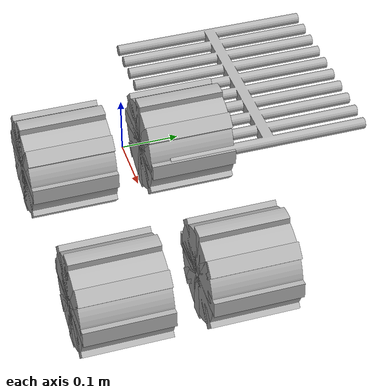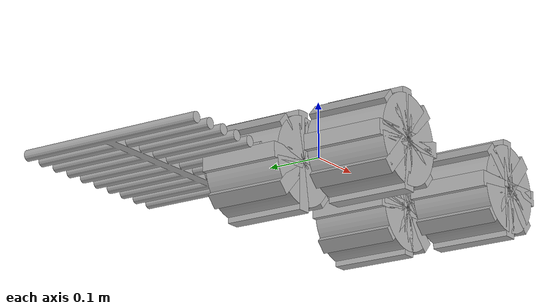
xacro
<?xml version="1.0" ?>
<robot name="easy_imax10" xmlns:xacro="http://www.ros.org/wiki/xacro">

<xacro:include filename="$(find easy_imax10_description)/urdf/materials.xacro" />
<xacro:include filename="$(find easy_imax10_description)/urdf/easy_imax10.trans" />
<xacro:include filename="$(find easy_imax10_description)/urdf/easy_imax10.gazebo" />
<link name="base_link">
  <inertial>
    <origin xyz="0.1694160000000001 6.013399387320873e-17 1.879187308537773e-18" rpy="0 0 0"/>
    <mass value="1.2099574875277086"/>
    <inertia ixx="0.012249" iyy="0.014034" izz="0.02622" ixy="0.0" iyz="0.0" ixz="0.0"/>
  </inertial>
  <visual>
    <origin xyz="0 0 0" rpy="0 0 0"/>
    <geometry>
      <mesh filename="package://easy_imax10_description/meshes/base_link.stl" scale="0.001 0.001 0.001"/>
    </geometry>
    <material name="silver"/>
  </visual>
  <collision>
    <origin xyz="0 0 0" rpy="0 0 0"/>
    <geometry>
      <mesh filename="package://easy_imax10_description/meshes/base_link.stl" scale="0.001 0.001 0.001"/>
    </geometry>
  </collision>
</link>

<link name="square2_2_v1_1">
  <inertial>
    <origin xyz="0.0004924276130157732 0.07500000000000002 0.0005731383886105031" rpy="0 0 0"/>
    <mass value="0.7367843289189576"/>
    <inertia ixx="0.002329" iyy="0.002042" izz="0.002476" ixy="0.0" iyz="0.0" ixz="0.00097"/>
  </inertial>
  <visual>
    <origin xyz="-0.0 0.18 -0.0" rpy="0 0 0"/>
    <geometry>
      <mesh filename="package://easy_imax10_description/meshes/square2_2_v1_1.stl" scale="0.001 0.001 0.001"/>
    </geometry>
    <material name="silver"/>
  </visual>
  <collision>
    <origin xyz="-0.0 0.18 -0.0" rpy="0 0 0"/>
    <geometry>
      <mesh filename="package://easy_imax10_description/meshes/square2_2_v1_1.stl" scale="0.001 0.001 0.001"/>
    </geometry>
  </collision>
</link>

<link name="square2_1_1">
  <inertial>
    <origin xyz="-0.0005531013046860513 0.075 0.0005093578577956545" rpy="0 0 0"/>
    <mass value="0.7351145457295356"/>
    <inertia ixx="0.00244" iyy="0.002037" izz="0.002353" ixy="0.0" iyz="0.0" ixz="-0.000969"/>
  </inertial>
  <visual>
    <origin xyz="-0.0 0.18 -0.0" rpy="0 0 0"/>
    <geometry>
      <mesh filename="package://easy_imax10_description/meshes/square2_1_1.stl" scale="0.001 0.001 0.001"/>
    </geometry>
    <material name="silver"/>
  </visual>
  <collision>
    <origin xyz="-0.0 0.18 -0.0" rpy="0 0 0"/>
    <geometry>
      <mesh filename="package://easy_imax10_description/meshes/square2_1_1.stl" scale="0.001 0.001 0.001"/>
    </geometry>
  </collision>
</link>

<link name="square2_4_v1_1">
  <inertial>
    <origin xyz="-0.0007636030845725855 0.07500000000000225 0.0003817342040724375" rpy="0 0 0"/>
    <mass value="0.73978681659222"/>
    <inertia ixx="0.003404" iyy="0.002066" izz="0.001436" ixy="-0.0" iyz="-0.0" ixz="2.9e-05"/>
  </inertial>
  <visual>
    <origin xyz="-0.0 0.18 -0.0" rpy="0 0 0"/>
    <geometry>
      <mesh filename="package://easy_imax10_description/meshes/square2_4_v1_1.stl" scale="0.001 0.001 0.001"/>
    </geometry>
    <material name="silver"/>
  </visual>
  <collision>
    <origin xyz="-0.0 0.18 -0.0" rpy="0 0 0"/>
    <geometry>
      <mesh filename="package://easy_imax10_description/meshes/square2_4_v1_1.stl" scale="0.001 0.001 0.001"/>
    </geometry>
  </collision>
</link>

<link name="square2_3_v1_1">
  <inertial>
    <origin xyz="-2.309948116219332e-05 0.075 0.0007689635373654955" rpy="0 0 0"/>
    <mass value="0.7360371753107673"/>
    <inertia ixx="0.00143" iyy="0.00204" izz="0.00337" ixy="0.0" iyz="-0.0" ixz="-5.8e-05"/>
  </inertial>
  <visual>
    <origin xyz="-0.0 0.18 -0.0" rpy="0 0 0"/>
    <geometry>
      <mesh filename="package://easy_imax10_description/meshes/square2_3_v1_1.stl" scale="0.001 0.001 0.001"/>
    </geometry>
    <material name="silver"/>
  </visual>
  <collision>
    <origin xyz="-0.0 0.18 -0.0" rpy="0 0 0"/>
    <geometry>
      <mesh filename="package://easy_imax10_description/meshes/square2_3_v1_1.stl" scale="0.001 0.001 0.001"/>
    </geometry>
  </collision>
</link>

<link name="square2_3_v1_2">
  <inertial>
    <origin xyz="-2.309948116219207e-05 0.075 0.0007689635373654955" rpy="0 0 0"/>
    <mass value="0.7360371753107673"/>
    <inertia ixx="0.00143" iyy="0.00204" izz="0.00337" ixy="0.0" iyz="-0.0" ixz="-5.8e-05"/>
  </inertial>
  <visual>
    <origin xyz="-0.338832 0.18 -0.0" rpy="0 0 0"/>
    <geometry>
      <mesh filename="package://easy_imax10_description/meshes/square2_3_v1_2.stl" scale="0.001 0.001 0.001"/>
    </geometry>
    <material name="silver"/>
  </visual>
  <collision>
    <origin xyz="-0.338832 0.18 -0.0" rpy="0 0 0"/>
    <geometry>
      <mesh filename="package://easy_imax10_description/meshes/square2_3_v1_2.stl" scale="0.001 0.001 0.001"/>
    </geometry>
  </collision>
</link>

<link name="square2_1_2">
  <inertial>
    <origin xyz="-0.0005531013046860545 0.075 0.0005093578577956545" rpy="0 0 0"/>
    <mass value="0.7351145457295356"/>
    <inertia ixx="0.00244" iyy="0.002037" izz="0.002353" ixy="0.0" iyz="0.0" ixz="-0.000969"/>
  </inertial>
  <visual>
    <origin xyz="-0.338832 0.18 -0.0" rpy="0 0 0"/>
    <geometry>
      <mesh filename="package://easy_imax10_description/meshes/square2_1_2.stl" scale="0.001 0.001 0.001"/>
    </geometry>
    <material name="silver"/>
  </visual>
  <collision>
    <origin xyz="-0.338832 0.18 -0.0" rpy="0 0 0"/>
    <geometry>
      <mesh filename="package://easy_imax10_description/meshes/square2_1_2.stl" scale="0.001 0.001 0.001"/>
    </geometry>
  </collision>
</link>

<link name="square2_4_v1_2">
  <inertial>
    <origin xyz="-0.0007636030845726283 0.07500000000000225 0.0003817342040724375" rpy="0 0 0"/>
    <mass value="0.73978681659222"/>
    <inertia ixx="0.003404" iyy="0.002066" izz="0.001436" ixy="0.0" iyz="-0.0" ixz="2.9e-05"/>
  </inertial>
  <visual>
    <origin xyz="-0.338832 0.18 -0.0" rpy="0 0 0"/>
    <geometry>
      <mesh filename="package://easy_imax10_description/meshes/square2_4_v1_2.stl" scale="0.001 0.001 0.001"/>
    </geometry>
    <material name="silver"/>
  </visual>
  <collision>
    <origin xyz="-0.338832 0.18 -0.0" rpy="0 0 0"/>
    <geometry>
      <mesh filename="package://easy_imax10_description/meshes/square2_4_v1_2.stl" scale="0.001 0.001 0.001"/>
    </geometry>
  </collision>
</link>

<link name="square2_2_v1_2">
  <inertial>
    <origin xyz="0.0004924276130157668 0.07500000000000002 0.0005731383886105031" rpy="0 0 0"/>
    <mass value="0.7367843289189576"/>
    <inertia ixx="0.002329" iyy="0.002042" izz="0.002476" ixy="0.0" iyz="0.0" ixz="0.00097"/>
  </inertial>
  <visual>
    <origin xyz="-0.338832 0.18 -0.0" rpy="0 0 0"/>
    <geometry>
      <mesh filename="package://easy_imax10_description/meshes/square2_2_v1_2.stl" scale="0.001 0.001 0.001"/>
    </geometry>
    <material name="silver"/>
  </visual>
  <collision>
    <origin xyz="-0.338832 0.18 -0.0" rpy="0 0 0"/>
    <geometry>
      <mesh filename="package://easy_imax10_description/meshes/square2_2_v1_2.stl" scale="0.001 0.001 0.001"/>
    </geometry>
  </collision>
</link>

<link name="csquare2_4_v1_1">
  <inertial>
    <origin xyz="-0.0007636030845725677 -0.07500000000000229 0.00038173420407241283" rpy="0 0 0"/>
    <mass value="0.7397868165922202"/>
    <inertia ixx="0.003404" iyy="0.002066" izz="0.001436" ixy="0.0" iyz="-0.0" ixz="2.9e-05"/>
  </inertial>
  <visual>
    <origin xyz="-0.0 -0.18 -0.0" rpy="0 0 0"/>
    <geometry>
      <mesh filename="package://easy_imax10_description/meshes/csquare2_4_v1_1.stl" scale="0.001 0.001 0.001"/>
    </geometry>
    <material name="silver"/>
  </visual>
  <collision>
    <origin xyz="-0.0 -0.18 -0.0" rpy="0 0 0"/>
    <geometry>
      <mesh filename="package://easy_imax10_description/meshes/csquare2_4_v1_1.stl" scale="0.001 0.001 0.001"/>
    </geometry>
  </collision>
</link>

<link name="csquare2_1_v1_1">
  <inertial>
    <origin xyz="-0.0005531013046860635 -0.075 0.0005093578577957038" rpy="0 0 0"/>
    <mass value="0.7351145457295358"/>
    <inertia ixx="0.00244" iyy="0.002037" izz="0.002353" ixy="-0.0" iyz="0.0" ixz="-0.000969"/>
  </inertial>
  <visual>
    <origin xyz="-0.0 -0.18 -0.0" rpy="0 0 0"/>
    <geometry>
      <mesh filename="package://easy_imax10_description/meshes/csquare2_1_v1_1.stl" scale="0.001 0.001 0.001"/>
    </geometry>
    <material name="silver"/>
  </visual>
  <collision>
    <origin xyz="-0.0 -0.18 -0.0" rpy="0 0 0"/>
    <geometry>
      <mesh filename="package://easy_imax10_description/meshes/csquare2_1_v1_1.stl" scale="0.001 0.001 0.001"/>
    </geometry>
  </collision>
</link>

<link name="csquare2_2_v1_1">
  <inertial>
    <origin xyz="0.0004924276130157547 -0.07499999999999997 0.0005731383886105023" rpy="0 0 0"/>
    <mass value="0.7367843289189574"/>
    <inertia ixx="0.002329" iyy="0.002042" izz="0.002476" ixy="0.0" iyz="0.0" ixz="0.00097"/>
  </inertial>
  <visual>
    <origin xyz="-0.0 -0.18 -0.0" rpy="0 0 0"/>
    <geometry>
      <mesh filename="package://easy_imax10_description/meshes/csquare2_2_v1_1.stl" scale="0.001 0.001 0.001"/>
    </geometry>
    <material name="silver"/>
  </visual>
  <collision>
    <origin xyz="-0.0 -0.18 -0.0" rpy="0 0 0"/>
    <geometry>
      <mesh filename="package://easy_imax10_description/meshes/csquare2_2_v1_1.stl" scale="0.001 0.001 0.001"/>
    </geometry>
  </collision>
</link>

<link name="csquare2_3_v1_1">
  <inertial>
    <origin xyz="-2.309948116218096e-05 -0.075 0.0007689635373654925" rpy="0 0 0"/>
    <mass value="0.7360371753107673"/>
    <inertia ixx="0.00143" iyy="0.00204" izz="0.00337" ixy="0.0" iyz="-0.0" ixz="-5.8e-05"/>
  </inertial>
  <visual>
    <origin xyz="-0.0 -0.18 -0.0" rpy="0 0 0"/>
    <geometry>
      <mesh filename="package://easy_imax10_description/meshes/csquare2_3_v1_1.stl" scale="0.001 0.001 0.001"/>
    </geometry>
    <material name="silver"/>
  </visual>
  <collision>
    <origin xyz="-0.0 -0.18 -0.0" rpy="0 0 0"/>
    <geometry>
      <mesh filename="package://easy_imax10_description/meshes/csquare2_3_v1_1.stl" scale="0.001 0.001 0.001"/>
    </geometry>
  </collision>
</link>

<link name="csquare2_3_v1_2">
  <inertial>
    <origin xyz="-2.309948116219207e-05 -0.075 0.0007689635373654925" rpy="0 0 0"/>
    <mass value="0.7360371753107673"/>
    <inertia ixx="0.00143" iyy="0.00204" izz="0.00337" ixy="0.0" iyz="-0.0" ixz="-5.8e-05"/>
  </inertial>
  <visual>
    <origin xyz="-0.338832 -0.18 -0.0" rpy="0 0 0"/>
    <geometry>
      <mesh filename="package://easy_imax10_description/meshes/csquare2_3_v1_2.stl" scale="0.001 0.001 0.001"/>
    </geometry>
    <material name="silver"/>
  </visual>
  <collision>
    <origin xyz="-0.338832 -0.18 -0.0" rpy="0 0 0"/>
    <geometry>
      <mesh filename="package://easy_imax10_description/meshes/csquare2_3_v1_2.stl" scale="0.001 0.001 0.001"/>
    </geometry>
  </collision>
</link>

<link name="csquare2_1_v1_2">
  <inertial>
    <origin xyz="-0.0005531013046860545 -0.075 0.0005093578577957038" rpy="0 0 0"/>
    <mass value="0.7351145457295358"/>
    <inertia ixx="0.00244" iyy="0.002037" izz="0.002353" ixy="-0.0" iyz="0.0" ixz="-0.000969"/>
  </inertial>
  <visual>
    <origin xyz="-0.338832 -0.18 -0.0" rpy="0 0 0"/>
    <geometry>
      <mesh filename="package://easy_imax10_description/meshes/csquare2_1_v1_2.stl" scale="0.001 0.001 0.001"/>
    </geometry>
    <material name="silver"/>
  </visual>
  <collision>
    <origin xyz="-0.338832 -0.18 -0.0" rpy="0 0 0"/>
    <geometry>
      <mesh filename="package://easy_imax10_description/meshes/csquare2_1_v1_2.stl" scale="0.001 0.001 0.001"/>
    </geometry>
  </collision>
</link>

<link name="csquare2_2_v1_2">
  <inertial>
    <origin xyz="0.0004924276130157668 -0.07499999999999997 0.0005731383886105023" rpy="0 0 0"/>
    <mass value="0.7367843289189574"/>
    <inertia ixx="0.002329" iyy="0.002042" izz="0.002476" ixy="0.0" iyz="0.0" ixz="0.00097"/>
  </inertial>
  <visual>
    <origin xyz="-0.338832 -0.18 -0.0" rpy="0 0 0"/>
    <geometry>
      <mesh filename="package://easy_imax10_description/meshes/csquare2_2_v1_2.stl" scale="0.001 0.001 0.001"/>
    </geometry>
    <material name="silver"/>
  </visual>
  <collision>
    <origin xyz="-0.338832 -0.18 -0.0" rpy="0 0 0"/>
    <geometry>
      <mesh filename="package://easy_imax10_description/meshes/csquare2_2_v1_2.stl" scale="0.001 0.001 0.001"/>
    </geometry>
  </collision>
</link>

<link name="csquare2_4_v1_2">
  <inertial>
    <origin xyz="-0.0007636030845726283 -0.07500000000000229 0.00038173420407241283" rpy="0 0 0"/>
    <mass value="0.7397868165922202"/>
    <inertia ixx="0.003404" iyy="0.002066" izz="0.001436" ixy="-0.0" iyz="-0.0" ixz="2.9e-05"/>
  </inertial>
  <visual>
    <origin xyz="-0.338832 -0.18 -0.0" rpy="0 0 0"/>
    <geometry>
      <mesh filename="package://easy_imax10_description/meshes/csquare2_4_v1_2.stl" scale="0.001 0.001 0.001"/>
    </geometry>
    <material name="silver"/>
  </visual>
  <collision>
    <origin xyz="-0.338832 -0.18 -0.0" rpy="0 0 0"/>
    <geometry>
      <mesh filename="package://easy_imax10_description/meshes/csquare2_4_v1_2.stl" scale="0.001 0.001 0.001"/>
    </geometry>
  </collision>
</link>

<link name="gear_circle_v1_2">
  <inertial>
    <origin xyz="4.052314039881821e-15 0.075 1.1965870465641923e-17" rpy="0 0 0"/>
    <mass value="3.040295996465602"/>
    <inertia ixx="0.010642" iyy="0.009884" izz="0.010642" ixy="0.0" iyz="0.0" ixz="0.0"/>
  </inertial>
  <visual>
    <origin xyz="-0.338832 0.18 -0.0" rpy="0 0 0"/>
    <geometry>
      <mesh filename="package://easy_imax10_description/meshes/gear_circle_v1_2.stl" scale="0.001 0.001 0.001"/>
    </geometry>
    <material name="silver"/>
  </visual>
  <collision>
    <origin xyz="-0.338832 0.18 -0.0" rpy="0 0 0"/>
    <geometry>
      <mesh filename="package://easy_imax10_description/meshes/gear_circle_v1_2.stl" scale="0.001 0.001 0.001"/>
    </geometry>
  </collision>
</link>

<link name="gear_circle_v1_1">
  <inertial>
    <origin xyz="4.056430087852613e-15 0.075 1.1965870465641923e-17" rpy="0 0 0"/>
    <mass value="3.040295996465602"/>
    <inertia ixx="0.010642" iyy="0.009884" izz="0.010642" ixy="-0.0" iyz="0.0" ixz="0.0"/>
  </inertial>
  <visual>
    <origin xyz="-0.0 0.18 -0.0" rpy="0 0 0"/>
    <geometry>
      <mesh filename="package://easy_imax10_description/meshes/gear_circle_v1_1.stl" scale="0.001 0.001 0.001"/>
    </geometry>
    <material name="silver"/>
  </visual>
  <collision>
    <origin xyz="-0.0 0.18 -0.0" rpy="0 0 0"/>
    <geometry>
      <mesh filename="package://easy_imax10_description/meshes/gear_circle_v1_1.stl" scale="0.001 0.001 0.001"/>
    </geometry>
  </collision>
</link>

<link name="cgear_circle_v1_1">
  <inertial>
    <origin xyz="4.056430087852613e-15 -0.075 1.1965870465641923e-17" rpy="0 0 0"/>
    <mass value="3.040295996465602"/>
    <inertia ixx="0.010642" iyy="0.009884" izz="0.010642" ixy="0.0" iyz="0.0" ixz="0.0"/>
  </inertial>
  <visual>
    <origin xyz="-0.0 -0.18 -0.0" rpy="0 0 0"/>
    <geometry>
      <mesh filename="package://easy_imax10_description/meshes/cgear_circle_v1_1.stl" scale="0.001 0.001 0.001"/>
    </geometry>
    <material name="silver"/>
  </visual>
  <collision>
    <origin xyz="-0.0 -0.18 -0.0" rpy="0 0 0"/>
    <geometry>
      <mesh filename="package://easy_imax10_description/meshes/cgear_circle_v1_1.stl" scale="0.001 0.001 0.001"/>
    </geometry>
  </collision>
</link>

<link name="cgear_circle_v1_2">
  <inertial>
    <origin xyz="4.052314039881821e-15 -0.075 1.1965870465641923e-17" rpy="0 0 0"/>
    <mass value="3.040295996465602"/>
    <inertia ixx="0.010642" iyy="0.009884" izz="0.010642" ixy="0.0" iyz="0.0" ixz="0.0"/>
  </inertial>
  <visual>
    <origin xyz="-0.338832 -0.18 -0.0" rpy="0 0 0"/>
    <geometry>
      <mesh filename="package://easy_imax10_description/meshes/cgear_circle_v1_2.stl" scale="0.001 0.001 0.001"/>
    </geometry>
    <material name="silver"/>
  </visual>
  <collision>
    <origin xyz="-0.338832 -0.18 -0.0" rpy="0 0 0"/>
    <geometry>
      <mesh filename="package://easy_imax10_description/meshes/cgear_circle_v1_2.stl" scale="0.001 0.001 0.001"/>
    </geometry>
  </collision>
</link>

<joint name="1" type="fixed">
  <origin xyz="0.0 0.0 0.0" rpy="0 0 0"/>
  <parent link="gear_circle_v1_1"/>
  <child link="square2_2_v1_1"/>
</joint>

<joint name="2" type="fixed">
  <origin xyz="0.0 0.0 0.0" rpy="0 0 0"/>
  <parent link="gear_circle_v1_1"/>
  <child link="square2_1_1"/>
</joint>

<joint name="3" type="fixed">
  <origin xyz="0.0 0.0 0.0" rpy="0 0 0"/>
  <parent link="gear_circle_v1_1"/>
  <child link="square2_4_v1_1"/>
</joint>

<joint name="4" type="fixed">
  <origin xyz="0.0 0.0 0.0" rpy="0 0 0"/>
  <parent link="gear_circle_v1_1"/>
  <child link="square2_3_v1_1"/>
</joint>

<joint name="6" type="fixed">
  <origin xyz="0.0 0.0 0.0" rpy="0 0 0"/>
  <parent link="gear_circle_v1_2"/>
  <child link="square2_3_v1_2"/>
</joint>

<joint name="7" type="fixed">
  <origin xyz="0.0 0.0 0.0" rpy="0 0 0"/>
  <parent link="gear_circle_v1_2"/>
  <child link="square2_1_2"/>
</joint>

<joint name="8" type="fixed">
  <origin xyz="0.0 0.0 0.0" rpy="0 0 0"/>
  <parent link="square2_1_2"/>
  <child link="square2_4_v1_2"/>
</joint>

<joint name="9" type="fixed">
  <origin xyz="0.0 0.0 0.0" rpy="0 0 0"/>
  <parent link="gear_circle_v1_2"/>
  <child link="square2_2_v1_2"/>
</joint>

<joint name="11" type="fixed">
  <origin xyz="0.0 0.0 0.0" rpy="0 0 0"/>
  <parent link="cgear_circle_v1_1"/>
  <child link="csquare2_4_v1_1"/>
</joint>

<joint name="12" type="fixed">
  <origin xyz="0.0 0.0 0.0" rpy="0 0 0"/>
  <parent link="cgear_circle_v1_1"/>
  <child link="csquare2_1_v1_1"/>
</joint>

<joint name="13" type="fixed">
  <origin xyz="0.0 0.0 0.0" rpy="0 0 0"/>
  <parent link="cgear_circle_v1_1"/>
  <child link="csquare2_2_v1_1"/>
</joint>

<joint name="14" type="fixed">
  <origin xyz="0.0 0.0 0.0" rpy="0 0 0"/>
  <parent link="csquare2_1_v1_1"/>
  <child link="csquare2_3_v1_1"/>
</joint>

<joint name="15" type="fixed">
  <origin xyz="0.0 0.0 0.0" rpy="0 0 0"/>
  <parent link="cgear_circle_v1_2"/>
  <child link="csquare2_3_v1_2"/>
</joint>

<joint name="16" type="fixed">
  <origin xyz="0.0 0.0 0.0" rpy="0 0 0"/>
  <parent link="cgear_circle_v1_2"/>
  <child link="csquare2_1_v1_2"/>
</joint>

<joint name="17" type="fixed">
  <origin xyz="0.0 0.0 0.0" rpy="0 0 0"/>
  <parent link="csquare2_1_v1_2"/>
  <child link="csquare2_2_v1_2"/>
</joint>

<joint name="18" type="fixed">
  <origin xyz="0.0 0.0 0.0" rpy="0 0 0"/>
  <parent link="csquare2_1_v1_2"/>
  <child link="csquare2_4_v1_2"/>
</joint>

<joint name="19" type="continuous">
  <origin xyz="0.338832 -0.18 0.0" rpy="0 0 0"/>
  <parent link="base_link"/>
  <child link="gear_circle_v1_2"/>
  <axis xyz="0.0 -1.0 0.0"/>
</joint>

<joint name="20" type="continuous">
  <origin xyz="0.0 -0.18 0.0" rpy="0 0 0"/>
  <parent link="base_link"/>
  <child link="gear_circle_v1_1"/>
  <axis xyz="0.0 -1.0 0.0"/>
</joint>

<joint name="21" type="continuous">
  <origin xyz="0.0 0.18 0.0" rpy="0 0 0"/>
  <parent link="base_link"/>
  <child link="cgear_circle_v1_1"/>
  <axis xyz="0.0 1.0 0.0"/>
</joint>

<joint name="22" type="continuous">
  <origin xyz="0.338832 0.18 0.0" rpy="0 0 0"/>
  <parent link="base_link"/>
  <child link="cgear_circle_v1_2"/>
  <axis xyz="0.0 1.0 0.0"/>
</joint>

</robot>

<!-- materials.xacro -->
<robot name="easy_imax10" xmlns:xacro="http://www.ros.org/wiki/xacro" >

<material name="silver">
  <color rgba="0.700 0.700 0.700 1.000"/>
</material>

</robot>

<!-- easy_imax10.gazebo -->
<robot name="easy_imax10" xmlns:xacro="http://www.ros.org/wiki/xacro" >

<xacro:property name="body_color" value="Gazebo/Silver" />

<gazebo>
  <plugin name="control" filename="libgazebo_ros_control.so"/>
</gazebo>
<gazebo reference="base_link">
  <material>${body_color}</material>
  <mu1>0.2</mu1>
  <mu2>0.2</mu2>
  <selfCollide>true</selfCollide>
  <gravity>true</gravity>
</gazebo>

<gazebo reference="7_1">
  <material>${body_color}</material>
  <mu1>0.2</mu1>
  <mu2>0.2</mu2>
  <selfCollide>true</selfCollide>
</gazebo>

<gazebo reference="9_1">
  <material>${body_color}</material>
  <mu1>0.2</mu1>
  <mu2>0.2</mu2>
  <selfCollide>true</selfCollide>
</gazebo>

<gazebo reference="10_1">
  <material>${body_color}</material>
  <mu1>0.2</mu1>
  <mu2>0.2</mu2>
  <selfCollide>true</selfCollide>
</gazebo>

<gazebo reference="8_1">
  <material>${body_color}</material>
  <mu1>0.2</mu1>
  <mu2>0.2</mu2>
  <selfCollide>true</selfCollide>
</gazebo>

<gazebo reference="8_2">
  <material>${body_color}</material>
  <mu1>0.2</mu1>
  <mu2>0.2</mu2>
  <selfCollide>true</selfCollide>
</gazebo>

<gazebo reference="9_2">
  <material>${body_color}</material>
  <mu1>0.2</mu1>
  <mu2>0.2</mu2>
  <selfCollide>true</selfCollide>
</gazebo>

<gazebo reference="10_2">
  <material>${body_color}</material>
  <mu1>0.2</mu1>
  <mu2>0.2</mu2>
  <selfCollide>true</selfCollide>
</gazebo>

<gazebo reference="7_2">
  <material>${body_color}</material>
  <mu1>0.2</mu1>
  <mu2>0.2</mu2>
  <selfCollide>true</selfCollide>
</gazebo>

<gazebo reference="15_1">
  <material>${body_color}</material>
  <mu1>0.2</mu1>
  <mu2>0.2</mu2>
  <selfCollide>true</selfCollide>
</gazebo>

<gazebo reference="12_1">
  <material>${body_color}</material>
  <mu1>0.2</mu1>
  <mu2>0.2</mu2>
  <selfCollide>true</selfCollide>
</gazebo>

<gazebo reference="13_1">
  <material>${body_color}</material>
  <mu1>0.2</mu1>
  <mu2>0.2</mu2>
  <selfCollide>true</selfCollide>
</gazebo>

<gazebo reference="14_1">
  <material>${body_color}</material>
  <mu1>0.2</mu1>
  <mu2>0.2</mu2>
  <selfCollide>true</selfCollide>
</gazebo>

<gazebo reference="14_2">
  <material>${body_color}</material>
  <mu1>0.2</mu1>
  <mu2>0.2</mu2>
  <selfCollide>true</selfCollide>
</gazebo>

<gazebo reference="12_2">
  <material>${body_color}</material>
  <mu1>0.2</mu1>
  <mu2>0.2</mu2>
  <selfCollide>true</selfCollide>
</gazebo>

<gazebo reference="13_2">
  <material>${body_color}</material>
  <mu1>0.2</mu1>
  <mu2>0.2</mu2>
  <selfCollide>true</selfCollide>
</gazebo>

<gazebo reference="15_2">
  <material>${body_color}</material>
  <mu1>0.2</mu1>
  <mu2>0.2</mu2>
  <selfCollide>true</selfCollide>
</gazebo>

<gazebo reference="6_1">
  <material>${body_color}</material>
  <mu1>0.2</mu1>
  <mu2>0.2</mu2>
  <selfCollide>true</selfCollide>
</gazebo>

<gazebo reference="11_1">
  <material>${body_color}</material>
  <mu1>0.2</mu1>
  <mu2>0.2</mu2>
  <selfCollide>true</selfCollide>
</gazebo>

<gazebo reference="8_5">
  <material>${body_color}</material>
  <mu1>0.2</mu1>
  <mu2>0.2</mu2>
  <selfCollide>true</selfCollide>
</gazebo>

<gazebo reference="9_5">
  <material>${body_color}</material>
  <mu1>0.2</mu1>
  <mu2>0.2</mu2>
  <selfCollide>true</selfCollide>
</gazebo>

<gazebo reference="7_5">
  <material>${body_color}</material>
  <mu1>0.2</mu1>
  <mu2>0.2</mu2>
  <selfCollide>true</selfCollide>
</gazebo>

<gazebo reference="10_5">
  <material>${body_color}</material>
  <mu1>0.2</mu1>
  <mu2>0.2</mu2>
  <selfCollide>true</selfCollide>
</gazebo>

<gazebo reference="10_4">
  <material>${body_color}</material>
  <mu1>0.2</mu1>
  <mu2>0.2</mu2>
  <selfCollide>true</selfCollide>
</gazebo>

<gazebo reference="7_4">
  <material>${body_color}</material>
  <mu1>0.2</mu1>
  <mu2>0.2</mu2>
  <selfCollide>true</selfCollide>
</gazebo>

<gazebo reference="8_4">
  <material>${body_color}</material>
  <mu1>0.2</mu1>
  <mu2>0.2</mu2>
  <selfCollide>true</selfCollide>
</gazebo>

<gazebo reference="9_4">
  <material>${body_color}</material>
  <mu1>0.2</mu1>
  <mu2>0.2</mu2>
  <selfCollide>true</selfCollide>
</gazebo>

<gazebo reference="7_3">
  <material>${body_color}</material>
  <mu1>0.2</mu1>
  <mu2>0.2</mu2>
  <selfCollide>true</selfCollide>
</gazebo>

<gazebo reference="9_3">
  <material>${body_color}</material>
  <mu1>0.2</mu1>
  <mu2>0.2</mu2>
  <selfCollide>true</selfCollide>
</gazebo>

<gazebo reference="8_3">
  <material>${body_color}</material>
  <mu1>0.2</mu1>
  <mu2>0.2</mu2>
  <selfCollide>true</selfCollide>
</gazebo>

<gazebo reference="10_3">
  <material>${body_color}</material>
  <mu1>0.2</mu1>
  <mu2>0.2</mu2>
  <selfCollide>true</selfCollide>
</gazebo>

<gazebo reference="6_2">
  <material>${body_color}</material>
  <mu1>0.2</mu1>
  <mu2>0.2</mu2>
  <selfCollide>true</selfCollide>
</gazebo>

<gazebo reference="6_3">
  <material>${body_color}</material>
  <mu1>0.2</mu1>
  <mu2>0.2</mu2>
  <selfCollide>true</selfCollide>
</gazebo>

<gazebo reference="6_4">
  <material>${body_color}</material>
  <mu1>0.2</mu1>
  <mu2>0.2</mu2>
  <selfCollide>true</selfCollide>
</gazebo>

<gazebo reference="6_5">
  <material>${body_color}</material>
  <mu1>0.2</mu1>
  <mu2>0.2</mu2>
  <selfCollide>true</selfCollide>
</gazebo>

<gazebo reference="14_4">
  <material>${body_color}</material>
  <mu1>0.2</mu1>
  <mu2>0.2</mu2>
  <selfCollide>true</selfCollide>
</gazebo>

<gazebo reference="15_4">
  <material>${body_color}</material>
  <mu1>0.2</mu1>
  <mu2>0.2</mu2>
  <selfCollide>true</selfCollide>
</gazebo>

<gazebo reference="12_4">
  <material>${body_color}</material>
  <mu1>0.2</mu1>
  <mu2>0.2</mu2>
  <selfCollide>true</selfCollide>
</gazebo>

<gazebo reference="13_4">
  <material>${body_color}</material>
  <mu1>0.2</mu1>
  <mu2>0.2</mu2>
  <selfCollide>true</selfCollide>
</gazebo>

<gazebo reference="12_5">
  <material>${body_color}</material>
  <mu1>0.2</mu1>
  <mu2>0.2</mu2>
  <selfCollide>true</selfCollide>
</gazebo>

<gazebo reference="14_5">
  <material>${body_color}</material>
  <mu1>0.2</mu1>
  <mu2>0.2</mu2>
  <selfCollide>true</selfCollide>
</gazebo>

<gazebo reference="13_5">
  <material>${body_color}</material>
  <mu1>0.2</mu1>
  <mu2>0.2</mu2>
  <selfCollide>true</selfCollide>
</gazebo>

<gazebo reference="15_5">
  <material>${body_color}</material>
  <mu1>0.2</mu1>
  <mu2>0.2</mu2>
  <selfCollide>true</selfCollide>
</gazebo>

<gazebo reference="15_3">
  <material>${body_color}</material>
  <mu1>0.2</mu1>
  <mu2>0.2</mu2>
  <selfCollide>true</selfCollide>
</gazebo>

<gazebo reference="12_3">
  <material>${body_color}</material>
  <mu1>0.2</mu1>
  <mu2>0.2</mu2>
  <selfCollide>true</selfCollide>
</gazebo>

<gazebo reference="14_3">
  <material>${body_color}</material>
  <mu1>0.2</mu1>
  <mu2>0.2</mu2>
  <selfCollide>true</selfCollide>
</gazebo>

<gazebo reference="13_3">
  <material>${body_color}</material>
  <mu1>0.2</mu1>
  <mu2>0.2</mu2>
  <selfCollide>true</selfCollide>
</gazebo>

<gazebo reference="11_4">
  <material>${body_color}</material>
  <mu1>0.2</mu1>
  <mu2>0.2</mu2>
  <selfCollide>true</selfCollide>
</gazebo>

<gazebo reference="11_5">
  <material>${body_color}</material>
  <mu1>0.2</mu1>
  <mu2>0.2</mu2>
  <selfCollide>true</selfCollide>
</gazebo>

<gazebo reference="11_3">
  <material>${body_color}</material>
  <mu1>0.2</mu1>
  <mu2>0.2</mu2>
  <selfCollide>true</selfCollide>
</gazebo>

<gazebo reference="11_2">
  <material>${body_color}</material>
  <mu1>0.2</mu1>
  <mu2>0.2</mu2>
  <selfCollide>true</selfCollide>
</gazebo>

<gazebo reference="18_4">
  <material>${body_color}</material>
  <mu1>0.2</mu1>
  <mu2>0.2</mu2>
  <selfCollide>true</selfCollide>
</gazebo>

<gazebo reference="17_4">
  <material>${body_color}</material>
  <mu1>0.2</mu1>
  <mu2>0.2</mu2>
  <selfCollide>true</selfCollide>
</gazebo>

<gazebo reference="20_4">
  <material>${body_color}</material>
  <mu1>0.2</mu1>
  <mu2>0.2</mu2>
  <selfCollide>true</selfCollide>
</gazebo>

<gazebo reference="19_4">
  <material>${body_color}</material>
  <mu1>0.2</mu1>
  <mu2>0.2</mu2>
  <selfCollide>true</selfCollide>
</gazebo>

<gazebo reference="19_3">
  <material>${body_color}</material>
  <mu1>0.2</mu1>
  <mu2>0.2</mu2>
  <selfCollide>true</selfCollide>
</gazebo>

<gazebo reference="18_1">
  <material>${body_color}</material>
  <mu1>0.2</mu1>
  <mu2>0.2</mu2>
  <selfCollide>true</selfCollide>
</gazebo>

<gazebo reference="17_1">
  <material>${body_color}</material>
  <mu1>0.2</mu1>
  <mu2>0.2</mu2>
  <selfCollide>true</selfCollide>
</gazebo>

<gazebo reference="19_1">
  <material>${body_color}</material>
  <mu1>0.2</mu1>
  <mu2>0.2</mu2>
  <selfCollide>true</selfCollide>
</gazebo>

<gazebo reference="20_1">
  <material>${body_color}</material>
  <mu1>0.2</mu1>
  <mu2>0.2</mu2>
  <selfCollide>true</selfCollide>
</gazebo>

<gazebo reference="18_2">
  <material>${body_color}</material>
  <mu1>0.2</mu1>
  <mu2>0.2</mu2>
  <selfCollide>true</selfCollide>
</gazebo>

<gazebo reference="19_2">
  <material>${body_color}</material>
  <mu1>0.2</mu1>
  <mu2>0.2</mu2>
  <selfCollide>true</selfCollide>
</gazebo>

<gazebo reference="20_2">
  <material>${body_color}</material>
  <mu1>0.2</mu1>
  <mu2>0.2</mu2>
  <selfCollide>true</selfCollide>
</gazebo>

<gazebo reference="17_2">
  <material>${body_color}</material>
  <mu1>0.2</mu1>
  <mu2>0.2</mu2>
  <selfCollide>true</selfCollide>
</gazebo>

<gazebo reference="18_5">
  <material>${body_color}</material>
  <mu1>0.2</mu1>
  <mu2>0.2</mu2>
  <selfCollide>true</selfCollide>
</gazebo>

<gazebo reference="17_5">
  <material>${body_color}</material>
  <mu1>0.2</mu1>
  <mu2>0.2</mu2>
  <selfCollide>true</selfCollide>
</gazebo>

<gazebo reference="19_5">
  <material>${body_color}</material>
  <mu1>0.2</mu1>
  <mu2>0.2</mu2>
  <selfCollide>true</selfCollide>
</gazebo>

<gazebo reference="20_5">
  <material>${body_color}</material>
  <mu1>0.2</mu1>
  <mu2>0.2</mu2>
  <selfCollide>true</selfCollide>
</gazebo>

<gazebo reference="16_4">
  <material>${body_color}</material>
  <mu1>0.2</mu1>
  <mu2>0.2</mu2>
  <selfCollide>true</selfCollide>
</gazebo>

<gazebo reference="16_1">
  <material>${body_color}</material>
  <mu1>0.2</mu1>
  <mu2>0.2</mu2>
  <selfCollide>true</selfCollide>
</gazebo>

<gazebo reference="16_2">
  <material>${body_color}</material>
  <mu1>0.2</mu1>
  <mu2>0.2</mu2>
  <selfCollide>true</selfCollide>
</gazebo>

<gazebo reference="16_5">
  <material>${body_color}</material>
  <mu1>0.2</mu1>
  <mu2>0.2</mu2>
  <selfCollide>true</selfCollide>
</gazebo>

<gazebo reference="23_3">
  <material>${body_color}</material>
  <mu1>0.2</mu1>
  <mu2>0.2</mu2>
  <selfCollide>true</selfCollide>
</gazebo>

<gazebo reference="22_3">
  <material>${body_color}</material>
  <mu1>0.2</mu1>
  <mu2>0.2</mu2>
  <selfCollide>true</selfCollide>
</gazebo>

<gazebo reference="24_3">
  <material>${body_color}</material>
  <mu1>0.2</mu1>
  <mu2>0.2</mu2>
  <selfCollide>true</selfCollide>
</gazebo>

<gazebo reference="25_3">
  <material>${body_color}</material>
  <mu1>0.2</mu1>
  <mu2>0.2</mu2>
  <selfCollide>true</selfCollide>
</gazebo>

<gazebo reference="23_2">
  <material>${body_color}</material>
  <mu1>0.2</mu1>
  <mu2>0.2</mu2>
  <selfCollide>true</selfCollide>
</gazebo>

<gazebo reference="24_2">
  <material>${body_color}</material>
  <mu1>0.2</mu1>
  <mu2>0.2</mu2>
  <selfCollide>true</selfCollide>
</gazebo>

<gazebo reference="22_2">
  <material>${body_color}</material>
  <mu1>0.2</mu1>
  <mu2>0.2</mu2>
  <selfCollide>true</selfCollide>
</gazebo>

<gazebo reference="25_2">
  <material>${body_color}</material>
  <mu1>0.2</mu1>
  <mu2>0.2</mu2>
  <selfCollide>true</selfCollide>
</gazebo>

<gazebo reference="23_1">
  <material>${body_color}</material>
  <mu1>0.2</mu1>
  <mu2>0.2</mu2>
  <selfCollide>true</selfCollide>
</gazebo>

<gazebo reference="22_1">
  <material>${body_color}</material>
  <mu1>0.2</mu1>
  <mu2>0.2</mu2>
  <selfCollide>true</selfCollide>
</gazebo>

<gazebo reference="24_1">
  <material>${body_color}</material>
  <mu1>0.2</mu1>
  <mu2>0.2</mu2>
  <selfCollide>true</selfCollide>
</gazebo>

<gazebo reference="25_1">
  <material>${body_color}</material>
  <mu1>0.2</mu1>
  <mu2>0.2</mu2>
  <selfCollide>true</selfCollide>
</gazebo>

<gazebo reference="23_4">
  <material>${body_color}</material>
  <mu1>0.2</mu1>
  <mu2>0.2</mu2>
  <selfCollide>true</selfCollide>
</gazebo>

<gazebo reference="24_4">
  <material>${body_color}</material>
  <mu1>0.2</mu1>
  <mu2>0.2</mu2>
  <selfCollide>true</selfCollide>
</gazebo>

<gazebo reference="22_4">
  <material>${body_color}</material>
  <mu1>0.2</mu1>
  <mu2>0.2</mu2>
  <selfCollide>true</selfCollide>
</gazebo>

<gazebo reference="25_4">
  <material>${body_color}</material>
  <mu1>0.2</mu1>
  <mu2>0.2</mu2>
  <selfCollide>true</selfCollide>
</gazebo>

<gazebo reference="23_5">
  <material>${body_color}</material>
  <mu1>0.2</mu1>
  <mu2>0.2</mu2>
  <selfCollide>true</selfCollide>
</gazebo>

<gazebo reference="22_5">
  <material>${body_color}</material>
  <mu1>0.2</mu1>
  <mu2>0.2</mu2>
  <selfCollide>true</selfCollide>
</gazebo>

<gazebo reference="24_5">
  <material>${body_color}</material>
  <mu1>0.2</mu1>
  <mu2>0.2</mu2>
  <selfCollide>true</selfCollide>
</gazebo>

<gazebo reference="25_5">
  <material>${body_color}</material>
  <mu1>0.2</mu1>
  <mu2>0.2</mu2>
  <selfCollide>true</selfCollide>
</gazebo>

<gazebo reference="21_3">
  <material>${body_color}</material>
  <mu1>0.2</mu1>
  <mu2>0.2</mu2>
  <selfCollide>true</selfCollide>
</gazebo>

<gazebo reference="21_2">
  <material>${body_color}</material>
  <mu1>0.2</mu1>
  <mu2>0.2</mu2>
  <selfCollide>true</selfCollide>
</gazebo>

<gazebo reference="21_1">
  <material>${body_color}</material>
  <mu1>0.2</mu1>
  <mu2>0.2</mu2>
  <selfCollide>true</selfCollide>
</gazebo>

<gazebo reference="21_4">
  <material>${body_color}</material>
  <mu1>0.2</mu1>
  <mu2>0.2</mu2>
  <selfCollide>true</selfCollide>
</gazebo>

<gazebo reference="21_5">
  <material>${body_color}</material>
  <mu1>0.2</mu1>
  <mu2>0.2</mu2>
  <selfCollide>true</selfCollide>
</gazebo>

<gazebo reference="fl_1">
  <material>${body_color}</material>
  <mu1>0.2</mu1>
  <mu2>0.2</mu2>
  <selfCollide>true</selfCollide>
</gazebo>

<gazebo reference="rr_1">
  <material>${body_color}</material>
  <mu1>0.2</mu1>
  <mu2>0.2</mu2>
  <selfCollide>true</selfCollide>
</gazebo>

<gazebo reference="fl_2">
  <material>${body_color}</material>
  <mu1>0.2</mu1>
  <mu2>0.2</mu2>
  <selfCollide>true</selfCollide>
</gazebo>

<gazebo reference="fl_3">
  <material>${body_color}</material>
  <mu1>0.2</mu1>
  <mu2>0.2</mu2>
  <selfCollide>true</selfCollide>
</gazebo>

<gazebo reference="18_3">
  <material>${body_color}</material>
  <mu1>0.2</mu1>
  <mu2>0.2</mu2>
  <selfCollide>true</selfCollide>
</gazebo>

<gazebo reference="20_3">
  <material>${body_color}</material>
  <mu1>0.2</mu1>
  <mu2>0.2</mu2>
  <selfCollide>true</selfCollide>
</gazebo>

<gazebo reference="17_7">
  <material>${body_color}</material>
  <mu1>0.2</mu1>
  <mu2>0.2</mu2>
  <selfCollide>true</selfCollide>
</gazebo>

<gazebo reference="16_3">
  <material>${body_color}</material>
  <mu1>0.2</mu1>
  <mu2>0.2</mu2>
  <selfCollide>true</selfCollide>
</gazebo>

</robot>
